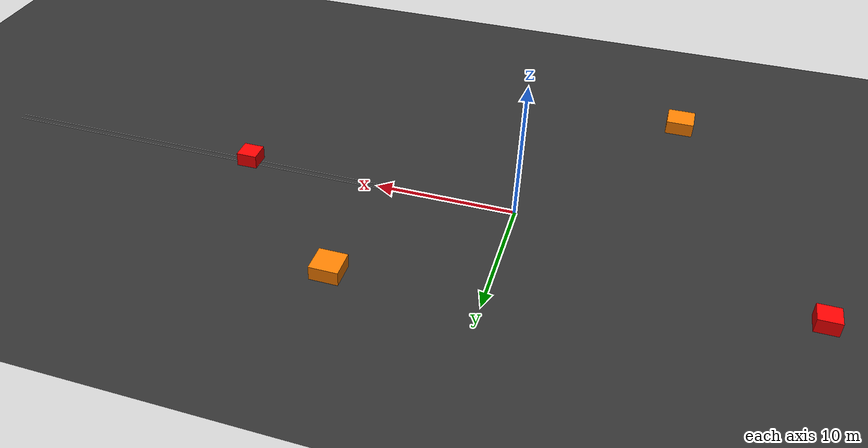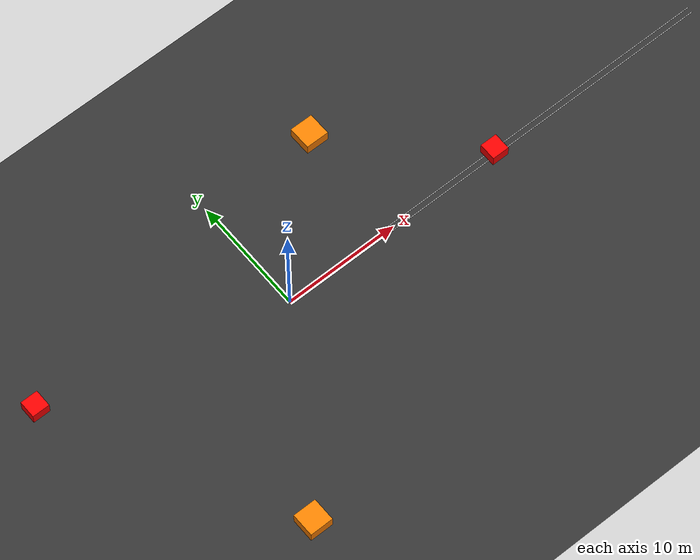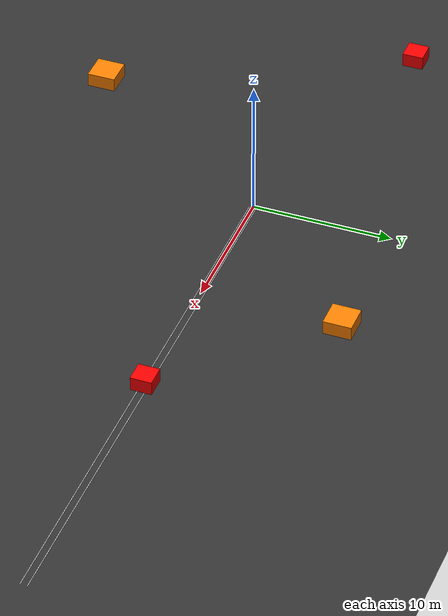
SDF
<?xml version="1.0"?>
<sdf version="1.6">
  <world name="warehouse_with_obstacles">
    <physics name="default_physics" default="true" type="ode">
      <max_step_size>0.001</max_step_size>
      <real_time_factor>1.0</real_time_factor>
    </physics>

    <include>
      <uri>model://sun</uri>
    </include>

    <include>
      <uri>model://ground_plane</uri>
    </include>

    <model name="static_obstacle_1">
      <pose>10 10 0.5 0 0 0</pose>
      <static>true</static>
      <link name="link">
        <collision name="collision">
          <geometry><box><size>2 2 1</size></box></geometry>
        </collision>
        <visual name="visual">
          <geometry><box><size>2 2 1</size></box></geometry>
          <material><ambient>1 0.5 0 1</ambient><diffuse>1 0.5 0 1</diffuse></material>
        </visual>
      </link>
    </model>

    <model name="static_obstacle_2">
      <pose>-10 -15 0.5 0 0 0</pose>
      <static>true</static>
      <link name="link">
        <collision name="collision">
          <geometry><box><size>2 2 1</size></box></geometry>
        </collision>
        <visual name="visual">
          <geometry><box><size>2 2 1</size></box></geometry>
          <material><ambient>1 0.5 0 1</ambient><diffuse>1 0.5 0 1</diffuse></material>
        </visual>
      </link>
    </model>

    <model name="dynamic_obstacle_1">
      <pose>20 0 0.5 0 0 0</pose>
      <link name="link">
        <inertial>
          <mass>2</mass>
          <inertia><ixx>0.1</ixx><iyy>0.1</iyy><izz>0.1</izz></inertia>
        </inertial>
        <collision name="collision">
          <geometry><box><size>1.5 1.5 1</size></box></geometry>
        </collision>
        <visual name="visual">
          <geometry><box><size>1.5 1.5 1</size></box></geometry>
          <material><ambient>1 0 0 1</ambient><diffuse>1 0 0 1</diffuse></material>
        </visual>
      </link>
    </model>

    <model name="dynamic_obstacle_2">
      <pose>-20 5 0.5 0 0 0</pose>
      <link name="link">
        <inertial>
          <mass>2</mass>
          <inertia><ixx>0.1</ixx><iyy>0.1</iyy><izz>0.1</izz></inertia>
        </inertial>
        <collision name="collision">
          <geometry><box><size>1.5 1.5 1</size></box></geometry>
        </collision>
        <visual name="visual">
          <geometry><box><size>1.5 1.5 1</size></box></geometry>
          <material><ambient>1 0 0 1</ambient><diffuse>1 0 0 1</diffuse></material>
        </visual>
      </link>
    </model>

    <model name="dark_floor">
      <static>true</static>
      <link name="link">
        <visual name="visual">
          <pose>0 0 0.002 0 0 0</pose>
          <geometry><plane><normal>0 0 1</normal><size>80 80</size></plane></geometry>
          <material><ambient>0.2 0.2 0.2 1</ambient><diffuse>0.2 0.2 0.2 1</diffuse></material>
        </visual>
      </link>
    </model>
    <model name="lane_left">
      <static>true</static>
      <pose>20 0.25 0.003 0 0 0</pose>
      <link name="link">
        <visual name="visual">
          <geometry><box><size>40 0.05 0.001</size></box></geometry>
          <material><ambient>1 1 1 1</ambient><diffuse>1 1 1 1</diffuse></material>
        </visual>
      </link>
    </model>
    <model name="lane_right">
      <static>true</static>
      <pose>20 -0.25 0.003 0 0 0</pose>
      <link name="link">
        <visual name="visual">
          <geometry><box><size>40 0.05 0.001</size></box></geometry>
          <material><ambient>1 1 1 1</ambient><diffuse>1 1 1 1</diffuse></material>
        </visual>
      </link>
    </model>
  </world>
</sdf>
